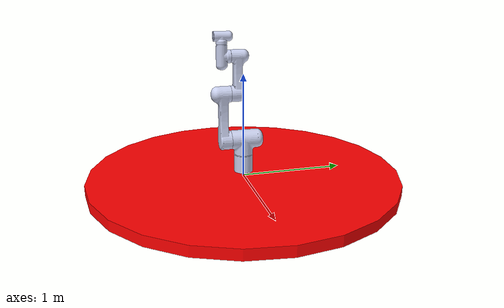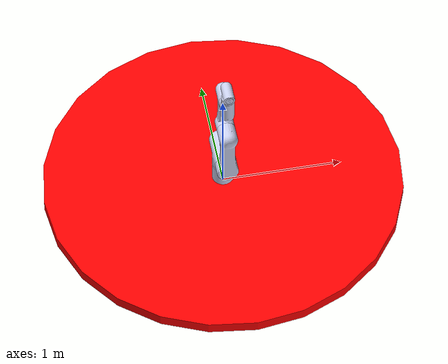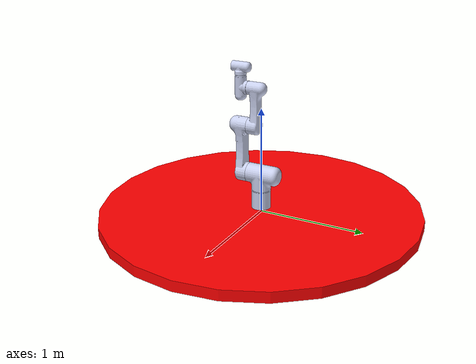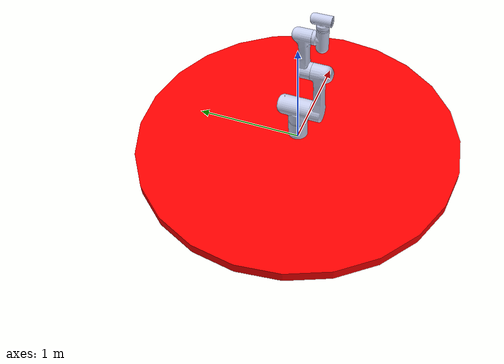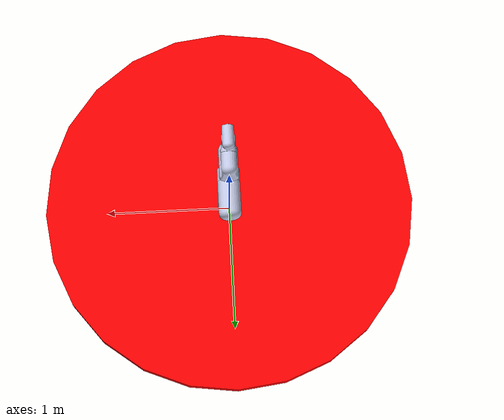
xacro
<?xml version="1.0"?>
<robot xmlns:xacro="http://www.ros.org/wiki/xacro" name="robot_nextup">

    <xacro:arg name="initial_positions_file" default="initial_positions.yaml" />

    <!-- Robot geometry (links link1..link6, base_link, end) -->
    <xacro:include filename="$(find simulation_nextup_moveit_config)/config/nextupCobot.urdf.xacro" />

    <!-- ros2_control hardware interface block -->
    <xacro:include filename="$(find simulation_nextup_moveit_config)/config/robot_nextup_ros2_control.xacro" />
    <xacro:robot_nextup_ros2_control
        initial_positions_file="$(find simulation_nextup_moveit_config)/config/$(arg initial_positions_file)" />
</robot>

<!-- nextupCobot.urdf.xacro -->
<cobot
  name="cobot_nextup" xmlns:xacro="http://www.ros.org/wiki/xacro" >
  <link name="world" />
    <joint name="ground" type="fixed">
        <parent link="world" />
        <child link="ground_link" />
    </joint>
    <link name="ground_link">
        <visual>
            <origin xyz="0 0 0" rpy="0 0 0" />
            <geometry>
                <cylinder radius="1.5" length="0.1" />
            </geometry>
            <material name="">
                <color rgba="1 0 0 0.0" />
            </material>
        </visual>
    </link>

    <joint name="base" type="fixed">
        <parent link="world" />
        <child link="base_link" />
    </joint>

  <link
    name="base_link">
    <inertial>
      <origin
        xyz="4.8572E-16 -8.0491E-16 0.14334"
        rpy="0 0 0" />
      <mass
        value="3.517" />
      <inertia
        ixx="0.023235"
        ixy="-6.5191E-19"
        ixz="1.0975E-17"
        iyy="0.023235"
        iyz="1.8879E-16"
        izz="0.017928" />
    </inertial>
    <visual>
      <origin
        xyz="0 0 0"
        rpy="0 0 0" />
      <geometry>
        <mesh
            filename="package://nextup_moveit_config/meshes/cobot/base_link.STL" />
      </geometry>
      <material
        name="">
        <color
          rgba="0.79216 0.81961 0.93333 1" />
      </material>
    </visual>
    <collision>
      <origin
        xyz="0 0 0"
        rpy="0 0 0" />
      <geometry>
        <mesh
            filename="package://nextup_moveit_config/meshes/cobot/base_link.STL" />
      </geometry>
    </collision>
  </link>

  <link
    name="link1">
    <inertial>
      <origin
        xyz="5.0145E-05 -0.021166 0.1336"
        rpy="0 0 0" />
      <mass
        value="4.0859" />
      <inertia
        ixx="0.025318"
        ixy="-1.9824E-06"
        ixz="4.8643E-08"
        iyy="0.020958"
        iyz="0.00029813"
        izz="0.023698" />
    </inertial>
    <visual>
      <origin
        xyz="0 0 0"
        rpy="0 0 0" />
      <geometry>
        <mesh
            filename="package://nextup_moveit_config/meshes/cobot/link1.STL" />
      </geometry>
      <material
        name="">
        <color
          rgba="0.79216 0.81961 0.93333 1" />
      </material>
    </visual>
    <collision>
      <origin
        xyz="0 0 0"
        rpy="0 0 0" />
      <geometry>
        <mesh
            filename="package://nextup_moveit_config/meshes/cobot/link1.STL" />
      </geometry>
    </collision>
  </link>
  <joint
    name="joint1"
    type="revolute">
    <origin
      xyz="0 0 0.23"
      rpy="0 0 0" />
    <parent
      link="base_link" />
    <child
      link="link1" />
    <axis
      xyz="0 0 -1" />
    <limit
      lower="-3.45"
      upper="3.45"
      effort="100"
      velocity="3.0" />
  </joint>
  <link
    name="link2">
    <inertial>
      <origin
        xyz="-2.8142E-06 0.30926 0.056092"
        rpy="0 0 0" />
      <mass
        value="3.2455" />
      <inertia
        ixx="0.071331"
        ixy="4.2319E-07"
        ixz="8.5934E-08"
        iyy="0.0096193"
        iyz="-0.0013454"
        izz="0.072526" />
    </inertial>
    <visual>
      <origin
        xyz="0 0 0"
        rpy="0 0 0" />
      <geometry>
        <mesh
            filename="package://nextup_moveit_config/meshes/cobot/link2.STL" />
      </geometry>
      <material
        name="">
        <color
          rgba="0.79216 0.81961 0.93333 1" />
      </material>
    </visual>
    <collision>
      <origin
        xyz="0 0 0"
        rpy="0 0 0" />
      <geometry>
        <mesh
            filename="package://nextup_moveit_config/meshes/cobot/link2.STL" />
      </geometry>
    </collision>
  </link>
  <joint
    name="joint2"
    type="revolute">
    <origin
      xyz="0 -0.125 0.145"
      rpy="1.5708 0 0" />
    <parent
      link="link1" />
    <child
      link="link2" />
    <axis
      xyz="0 0 -1" />
    <limit
      lower="-3.45"
      upper="3.45"
      effort="100"
      velocity="3.0" />
  </joint>
  <link
    name="link3">
    <inertial>
      <origin
        xyz="-3.22050928985851E-06 0.241038609860564 0.0617467741051982"
        rpy="0 0 0" />
      <mass
        value="2.01942512059375" />
      <inertia
        ixx="0.0301740705361511"
        ixy="-2.40665229038661E-06"
        ixz="-2.56219083232152E-07"
        iyy="0.00466840925620548"
        iyz="-0.000505692855941702"
        izz="0.0300447108085331" />
    </inertial>
    <visual>
      <origin
        xyz="0 0 0"
        rpy="0 0 0" />
      <geometry>
        <mesh
            filename="package://nextup_moveit_config/meshes/cobot/link3.STL" />
      </geometry>
      <material
        name="">
        <color
          rgba="0.792156862745098 0.819607843137255 0.933333333333333 1" />
      </material>
    </visual>
    <collision>
      <origin
        xyz="0 0 0"
        rpy="0 0 0" />
      <geometry>
        <mesh
            filename="package://nextup_moveit_config/meshes/cobot/link3.STL" />
      </geometry>
    </collision>
  </link>
  <joint
    name="joint3"
    type="revolute">
    <origin
      xyz="0 0.45 0"
      rpy="3.1416 0 3.1416" />
    <parent
      link="link2" />
    <child
      link="link3" />
    <axis
      xyz="0 0 -1" />
    <limit
      lower="-3.45"
      upper="3.45"
      effort="100"
      velocity="3.5" />
  </joint>
  <link
    name="link4">
    <inertial>
      <origin
        xyz="0.020347 1.0282E-09 0.072813"
        rpy="0 0 0" />
      <mass
        value="1.0936" />
      <inertia
        ixx="0.0018102"
        ixy="5.1868E-10"
        ixz="-0.00010615"
        iyy="0.0026414"
        iyz="2.7057E-10"
        izz="0.0025372" />
    </inertial>
    <visual>
      <origin
        xyz="0 0 0"
        rpy="0 0 0" />
      <geometry>
        <mesh
            filename="package://nextup_moveit_config/meshes/cobot/link4.STL" />
      </geometry>
      <material
        name="">
        <color
          rgba="0.79216 0.81961 0.93333 1" />
      </material>
    </visual>
    <collision>
      <origin
        xyz="0 0 0"
        rpy="0 0 0" />
      <geometry>
        <mesh
            filename="package://nextup_moveit_config/meshes/cobot/link4.STL" />
      </geometry>
    </collision>
  </link>
  <joint
    name="joint4"
    type="revolute">
    <origin
      xyz="0 0.35 0"
      rpy="3.1416 0 1.5708" />
    <parent
      link="link3" />
    <child
      link="link4" />
    <axis
      xyz="0 0 -1" />
    <limit
      lower="-3.45"
      upper="3.45"
      effort="100"
      velocity="4.0" />
  </joint>
  <link
    name="link5">
    <inertial>
      <origin
        xyz="1.4229E-08 -0.016937 0.060595"
        rpy="0 0 0" />
      <mass
        value="0.37817" />
      <inertia
        ixx="0.00077239"
        ixy="2.2117E-10"
        ixz="4.9318E-11"
        iyy="0.0007127"
        iyz="-2.9644E-05"
        izz="0.00073204" />
    </inertial>
    <visual>
      <origin
        xyz="0 0 0"
        rpy="0 0 0" />
      <geometry>
        <mesh
            filename="package://nextup_moveit_config/meshes/cobot/link5.STL" />
      </geometry>
      <material
        name="">
        <color
          rgba="0.79216 0.81961 0.93333 1" />
      </material>
    </visual>
    <collision>
      <origin
        xyz="0 0 0"
        rpy="0 0 0" />
      <geometry>
        <mesh
            filename="package://nextup_moveit_config/meshes/cobot/link5.STL" />
      </geometry>
    </collision>
  </link>
  <joint
    name="joint5"
    type="revolute">
    <origin
      xyz="0.112 0 0.079"
      rpy="1.5708 0 1.5708" />
    <parent
      link="link4" />
    <child
      link="link5" />
    <axis
      xyz="0 0 -1" />
    <limit
      lower="-3.45"
      upper="3.45"
      effort="100"
      velocity="4.0" />
  </joint>
  <link
    name="link6">
    <inertial>
      <origin
        xyz="8.3267E-17 0 -0.045114"
        rpy="0 0 0" />
      <mass
        value="0.2487" />
      <inertia
        ixx="0.00028976"
        ixy="1.3553E-20"
        ixz="5.1024E-19"
        iyy="0.00028976"
        iyz="-1.0901E-18"
        izz="0.00011142" />
    </inertial>
    <visual>
      <origin
        xyz="0 0 0"
        rpy="0 0 0" />
      <geometry>
        <mesh
            filename="package://nextup_moveit_config/meshes/cobot/link6.STL" />
      </geometry>
      <material
        name="">
        <color
          rgba="0.79216 0.81961 0.93333 1" />
      </material>
    </visual>
    <collision>
      <origin
        xyz="0 0 0"
        rpy="0 0 0" />
      <geometry>
        <mesh
            filename="package://nextup_moveit_config/meshes/cobot/link6.STL" />
      </geometry>
    </collision>
  </link>
  <joint
    name="joint6"
    type="revolute">
    <origin
      xyz="0 0.0775 0.0700000000000001"
      rpy="1.5707963267949 0.0 -3.14159265358979" />
    <parent
      link="link5" />
    <child
      link="link6" />
    <axis
      xyz="0 0 -1" />
    <limit
      lower="-6.8"
      upper="6.8"
      effort="100"
      velocity="4.8" />
  </joint>

  <joint name="end" type="fixed">
    <origin
      xyz="0 0 0"
      rpy="0 0 0" />
    <parent
      link="link6" />
    <child
      link="end" />
  </joint>

  <link name="end"/>

</cobot>
